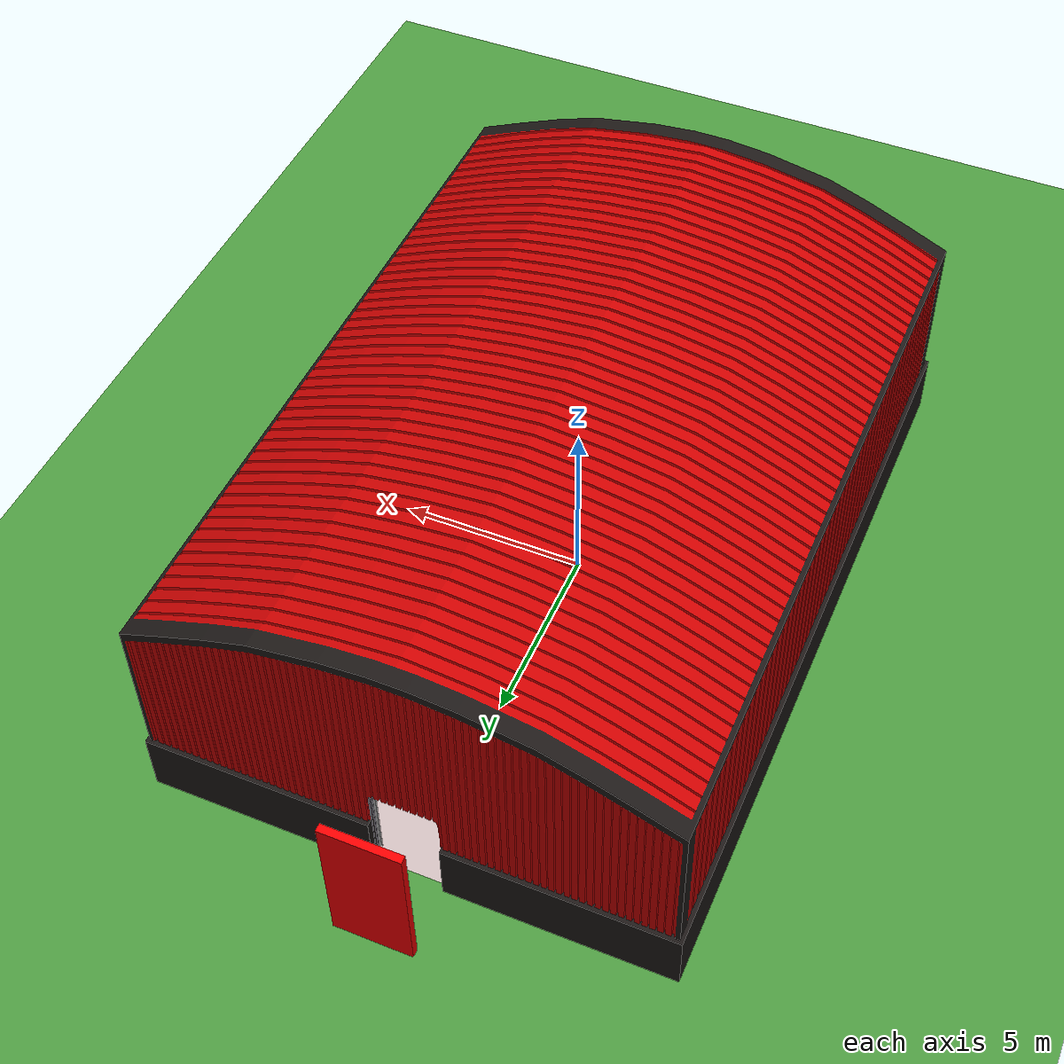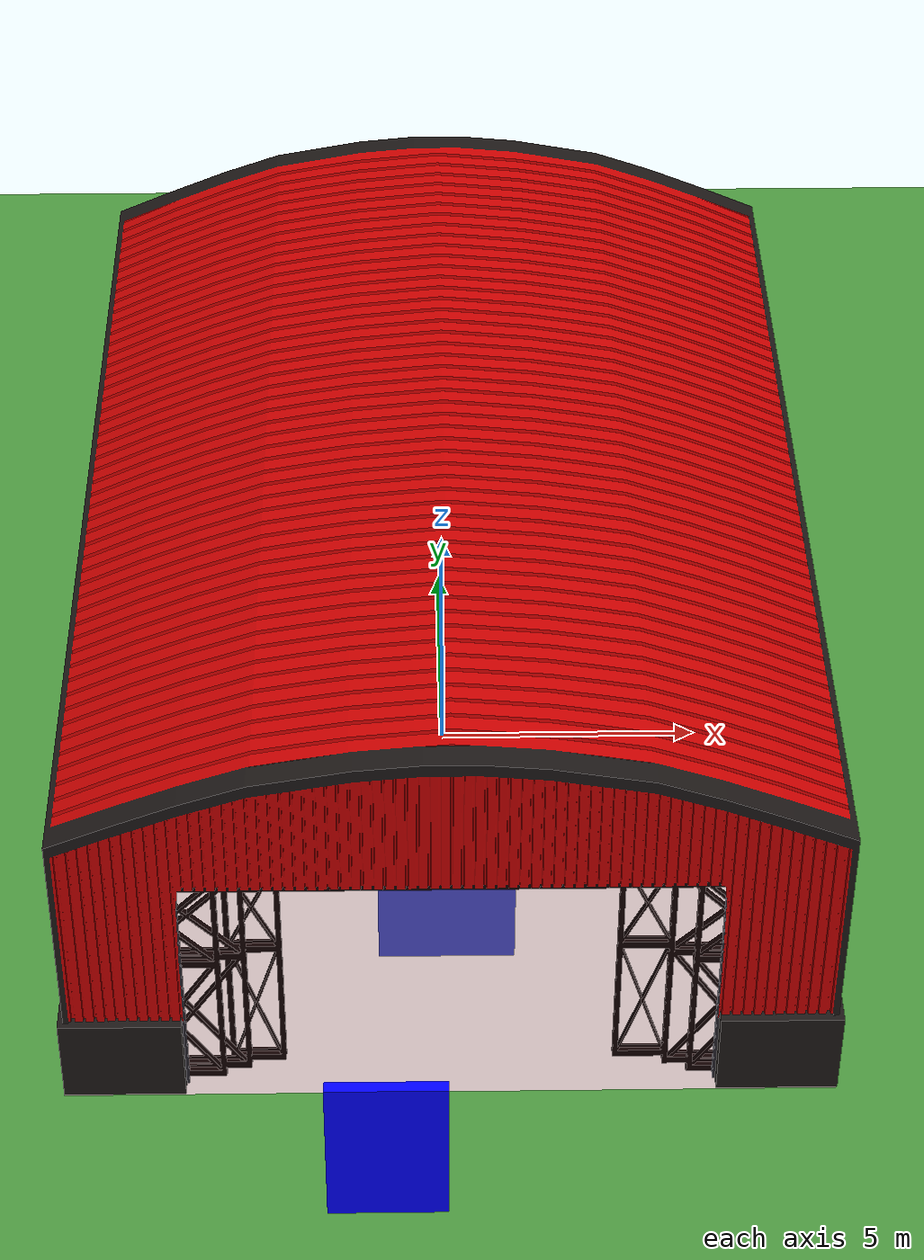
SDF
<sdf version="1.4">
 <world name="default">
  <include><uri>model://hangar</uri><pose>0 -2 0 0 0 0</pose></include>
  <include><uri>model://sun</uri></include>
  <include><uri>model://grass_plane</uri></include>
  <include><uri>model://wall1</uri><pose>0 8 0 0 0 0</pose></include>
  <include><uri>model://wall2</uri></include>
  <include><uri>model://wall3</uri><pose>0 -6 0 0 0 0</pose></include>
  <include><uri>model://wall4</uri><pose>0 -6 0 0 0 0</pose></include>
  <light name="user_point_light_0" type="point">
   <pose>7.53258 -10.5204 1 0 -0 0</pose>
   <diffuse>0.5 0.5 0.5 1</diffuse>
   <specular>0.1 0.1 0.1 1</specular>
   <attenuation>
    <range>37</range>
    <constant>1</constant>
    <linear>0.05</linear>
    <quadratic>0.001</quadratic>
   </attenuation>
   <cast_shadows>0</cast_shadows>
   <direction>0 0 -1</direction>
  </light>
  <light name="user_point_light_0_clone" type="point">
   <pose>-13.5592 -18.4336 10 0 -0 0</pose>
   <diffuse>0.498039 0.498039 0.498039 1</diffuse>
   <specular>0 0 0 1</specular>
   <direction>0 0 -1</direction>
   <attenuation>
    <range>37</range>
    <constant>1</constant>
    <linear>0.05</linear>
    <quadratic>0.001</quadratic>
   </attenuation>
  </light>
  <light name="user_point_light_1" type="point">
   <pose>-11.0322 15.4092 1 0 -0 0</pose>
   <diffuse>0.5 0.5 0.5 1</diffuse>
   <specular>0.1 0.1 0.1 1</specular>
   <attenuation>
    <range>20</range>
    <constant>0.5</constant>
    <linear>0.01</linear>
    <quadratic>0.001</quadratic>
   </attenuation>
   <cast_shadows>0</cast_shadows>
   <direction>0 0 -1</direction>
  </light>
  <light name="user_point_light_2" type="point">
   <pose>7.67436 15.2643 1 0 -0 0</pose>
   <diffuse>0.5 0.5 0.5 1</diffuse>
   <specular>0.1 0.1 0.1 1</specular>
   <attenuation>
    <range>20</range>
    <constant>0.5</constant>
    <linear>0.01</linear>
    <quadratic>0.001</quadratic>
   </attenuation>
   <cast_shadows>0</cast_shadows>
   <direction>0 0 -1</direction>
  </light>
  <light name="user_point_light_3" type="point">
   <pose>-13.7195 0.042174 1 0 -0 0</pose>
   <diffuse>0.5 0.5 0.5 1</diffuse>
   <specular>0.1 0.1 0.1 1</specular>
   <attenuation>
    <range>20</range>
    <constant>0.5</constant>
    <linear>0.01</linear>
    <quadratic>0.001</quadratic>
   </attenuation>
   <cast_shadows>0</cast_shadows>
   <direction>0 0 -1</direction>
  </light>
  <light name="user_point_light_4" type="point">
   <pose>12.95 2.24523 1 0 -0 0</pose>
   <diffuse>0.5 0.5 0.5 1</diffuse>
   <specular>0.1 0.1 0.1 1</specular>
   <attenuation>
    <range>20</range>
    <constant>0.5</constant>
    <linear>0.01</linear>
    <quadratic>0.001</quadratic>
   </attenuation>
   <cast_shadows>0</cast_shadows>
   <direction>0 0 -1</direction>
  </light>
  <scene><sky><clouds><speed>12</speed></clouds></sky></scene>
 </world>
</sdf>

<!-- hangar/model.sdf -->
<sdf version="1.4">
<model name="hangar">
  <static>true</static>
    <link name="hangar">
    	<pose>0 0 0 0 0 0</pose>
        <collision name="collision">
            <geometry>
	       <plane>
		   <size>100 100</size>
    	       </plane>
            </geometry>
        </collision>
        <visual name="visual">
            <geometry>
               <mesh>
                  <uri>model://hangar/meshes/hangar.dae</uri>
               </mesh>
            </geometry>
        </visual>
     </link>
</model>
</sdf>

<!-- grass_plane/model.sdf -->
<sdf version='1.4'>
  <model name='grass_plane'>
    <static>true</static>
    <link name='link'>
      <collision name='collision'>
        <geometry>
          <plane>
            <normal>0 0 1</normal>
            <size>250 250</size>
        </plane>
      </geometry>
        <surface>
          <friction>
            <ode>
              <mu>0.5</mu>
              <mu2>.5</mu2>
          </ode>
        </friction>
      </surface>
    </collision>

      <visual name='visual_0'>
        <pose>0 0 0 0 0 0</pose>

        <cast_shadows>false</cast_shadows>
        <geometry>
          <plane>
            <normal>0 0 1</normal>
            <size>250 250</size>
        </plane>
      </geometry>
        <material>
          <script>
            <uri>model://grass_plane/materials/scripts</uri>
            <uri>model://grass_plane/materials/textures</uri>
            <name>vrc/grass</name>
        </script>
      </material>
    </visual>
  </link>
</model>
</sdf>

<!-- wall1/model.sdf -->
<sdf version="1.4">
<model name="wall1">
    <link name="pared1">
        <collision name="collision">
            <geometry>
               <mesh>
                  <uri>model://wall1/meshes/pared1.dae</uri>
               </mesh>
            </geometry>
        </collision>
        <visual name="visual">
            <geometry>
               <mesh>
                  <uri>model://wall1/meshes/pared1.dae</uri>
               </mesh>
            </geometry>
        </visual>
     </link>
     <plugin name="wall1plugin" filename="libwall1plugin.so"/>
</model>
</sdf>

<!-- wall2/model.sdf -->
<sdf version='1.6'>
  <model name='wall3'>
    <link name='pared1'>
      <gravity>0</gravity>
      <pose frame=''>0 0 1.2 0 0 0</pose>
      <inertial>
        <mass>10000</mass>
        <inertia>
          <ixx>99999999999</ixx>
          <ixy>0</ixy>
          <ixz>0</ixz>
          <iyy>99999999999</iyy>
          <iyz>0</iyz>
          <izz>99999999999</izz>
        </inertia>
        <pose frame=''>0 0 0 0 -0 0</pose>
      </inertial>
      <self_collide>0</self_collide>
      <kinematic>0</kinematic>
      <gravity>1</gravity>
      <visual name='visual'>
        <geometry>
          <box>
            <size>6.266 0.150783 2.4</size>
          </box>
        </geometry>
        <material>
          <script>
            <name>Gazebo/Grey</name>
            <uri>file://media/materials/scripts/gazebo.material</uri>
          </script>
          <ambient>0 0 1 1</ambient>
          <diffuse>0.3 0.3 0.8 1</diffuse>
          <specular>0.1 0.1 0.005 1</specular>
          <emissive>0 0 0 1</emissive>
          <shader type='vertex'>
            <normal_map>__default__</normal_map>
          </shader>
        </material>
        <pose frame=''>0 0 0 0 -0 0</pose>
        <transparency>0</transparency>
        <cast_shadows>1</cast_shadows>
      </visual>
      <collision name='collision'>
        <laser_retro>0</laser_retro>
        <max_contacts>10</max_contacts>
        <pose frame=''>0 0 0 0 -0 0</pose>
        <geometry>
          <box>
            <size>6.266 0.150783 2.4</size>
          </box>
        </geometry>
        <surface>
          <friction>
            <ode>
              <mu>100</mu>
              <mu2>100</mu2>
              <fdir1>0 0 0</fdir1>
              <slip1>0</slip1>
              <slip2>0</slip2>
            </ode>
            <torsional>
              <coefficient>1</coefficient>
              <patch_radius>0</patch_radius>
              <surface_radius>0</surface_radius>
              <use_patch_radius>1</use_patch_radius>
              <ode>
                <slip>0</slip>
              </ode>
            </torsional>
          </friction>
          <bounce>
            <restitution_coefficient>0</restitution_coefficient>
            <threshold>1e+06</threshold>
          </bounce>
          <contact>
            <collide_without_contact>0</collide_without_contact>
            <collide_without_contact_bitmask>1</collide_without_contact_bitmask>
            <collide_bitmask>1</collide_bitmask>
            <ode>
              <soft_cfm>0</soft_cfm>
              <soft_erp>0.2</soft_erp>
              <kp>1e+13</kp>
              <kd>1</kd>
              <max_vel>0.01</max_vel>
              <min_depth>0</min_depth>
            </ode>
            <bullet>
              <split_impulse>1</split_impulse>
              <split_impulse_penetration_threshold>-0.01</split_impulse_penetration_threshold>
              <soft_cfm>0</soft_cfm>
              <soft_erp>0.2</soft_erp>
              <kp>1e+13</kp>
              <kd>1</kd>
            </bullet>
          </contact>
        </surface>
      </collision>
    </link>
    <static>0</static>
    <allow_auto_disable>1</allow_auto_disable>
    <plugin name="wall2plugin" filename="libwall2plugin.so"/>
  </model>
</sdf>

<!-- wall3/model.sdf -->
<sdf version='1.6'>
  <model name='wall3'>
    <link name='pared1'>
      <pose frame=''>0 0 2.133 0 0 0</pose>
      <inertial>
        <mass>10000</mass>
        <inertia>
          <ixx>99999999999</ixx>
          <ixy>0</ixy>
          <ixz>0</ixz>
          <iyy>99999999999</iyy>
          <iyz>0</iyz>
          <izz>99999999999</izz>
        </inertia>
        <pose frame=''>0 0 0 0 -0 0</pose>
      </inertial>
      <self_collide>0</self_collide>
      <kinematic>0</kinematic>
      <gravity>1</gravity>
      <visual name='visual'>
        <geometry>
          <box>
            <size>2.5 0.150783 4.266</size>
          </box>
        </geometry>
        <material>
          <script>
            <name>Gazebo/Grey</name>
            <uri>file://media/materials/scripts/gazebo.material</uri>
          </script>
          <ambient>0 0 1 1</ambient>
          <diffuse>0.3 0.3 0.8 1</diffuse>
          <specular>0.1 0.01 0.01 1</specular>
          <emissive>0 0 0 1</emissive>
          <shader type='vertex'>
            <normal_map>__default__</normal_map>
          </shader>
        </material>
        <pose frame=''>0 0 0 0 -0 0</pose>
        <transparency>0</transparency>
        <cast_shadows>1</cast_shadows>
      </visual>
      <collision name='collision'>
        <laser_retro>0</laser_retro>
        <max_contacts>10</max_contacts>
        <pose frame=''>0 0 0 0 -0 0</pose>
        <geometry>
          <box>
            <size>2.5 0.150783 4.266</size>
          </box>
        </geometry>
        <surface>
          <friction>
            <ode>
              <mu>100</mu>
              <mu2>100</mu2>
              <fdir1>0 0 0</fdir1>
              <slip1>0</slip1>
              <slip2>0</slip2>
            </ode>
            <torsional>
              <coefficient>1</coefficient>
              <patch_radius>0</patch_radius>
              <surface_radius>0</surface_radius>
              <use_patch_radius>1</use_patch_radius>
              <ode>
                <slip>0</slip>
              </ode>
            </torsional>
          </friction>
          <bounce>
            <restitution_coefficient>0</restitution_coefficient>
            <threshold>1e+06</threshold>
          </bounce>
          <contact>
            <collide_without_contact>0</collide_without_contact>
            <collide_without_contact_bitmask>1</collide_without_contact_bitmask>
            <collide_bitmask>1</collide_bitmask>
            <ode>
              <soft_cfm>0</soft_cfm>
              <soft_erp>0.2</soft_erp>
              <kp>1e+13</kp>
              <kd>1</kd>
              <max_vel>0.01</max_vel>
              <min_depth>0</min_depth>
            </ode>
            <bullet>
              <split_impulse>1</split_impulse>
              <split_impulse_penetration_threshold>-0.01</split_impulse_penetration_threshold>
              <soft_cfm>0</soft_cfm>
              <soft_erp>0.2</soft_erp>
              <kp>1e+13</kp>
              <kd>1</kd>
            </bullet>
          </contact>
        </surface>
      </collision>
    </link>
    <static>0</static>
    <allow_auto_disable>1</allow_auto_disable>
    <plugin name="wall3plugin" filename="libwall3plugin.so"/>
  </model>
</sdf>

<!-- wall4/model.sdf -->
<sdf version="1.4">
<model name="wall4">
    <link name="pared4">
        <collision name="collision">
            <geometry>
               <mesh>
                  <uri>model://wall4/meshes/pared4.dae</uri>
               </mesh>
            </geometry>
        </collision>
        <visual name="visual">
            <geometry>
               <mesh>
                  <uri>model://wall4/meshes/pared4.dae</uri>
               </mesh>
            </geometry>
        </visual>
     </link>
     <plugin name="wall4plugin" filename="libwall4plugin.so"/>
</model>
</sdf>
